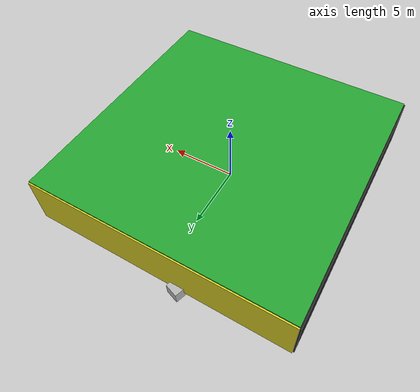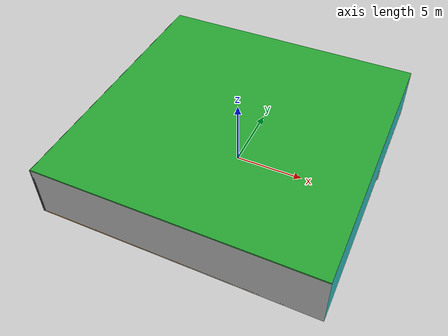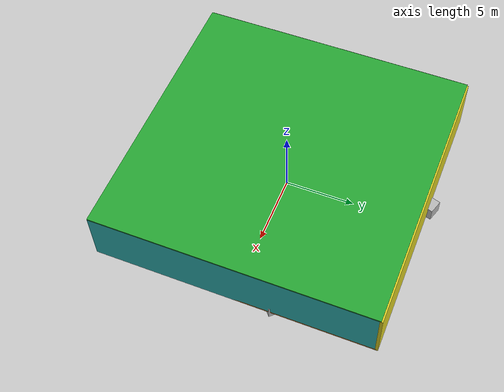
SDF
<sdf version="1.4">
 <world name="default">
  <physics type="ode">
   <max_step_size>0.001</max_step_size>
   <real_time_factor>1</real_time_factor>
   <real_time_update_rate>1000</real_time_update_rate>
   <gravity>0 0 -9.8</gravity>
  </physics>
  <scene><ambient>0.4 0.4 0.4 1</ambient><background>0.7 0.7 0.7 1</background><shadows>1</shadows></scene>
  <model name="Surrounding">
   <static>1</static>
   <link name="Ceiling">
    <collision name="Ceiling_Collision"><geometry><box><size>20 20 0.1</size></box></geometry></collision>
    <visual name="Ceiling_Visual">
     <geometry><box><size>20 20 0.1</size></box></geometry>
     <material>
      <script><uri>file://media/materials/scripts/gazebo.material</uri><name>Gazebo/Green</name></script>
     </material>
    </visual>
    <pose>0 0 4.05 0 0 0</pose>
   </link>
   <link name="Wall_South">
    <collision name="Wall_South_Collision">
     <geometry><box><size>20 0 4</size></box></geometry>
     <pose>0 0 2 0 -0 0</pose>
    </collision>
    <visual name="Wall_South_Visual">
     <pose>0 0 2 0 -0 0</pose>
     <geometry><box><size>20 0 4</size></box></geometry>
     <material>
      <script><uri>file://media/materials/scripts/gazebo.material</uri><name>Gazebo/JointAnchor</name></script>
     </material>
    </visual>
    <velocity_decay><linear>0</linear><angular>0</angular></velocity_decay>
    <pose>0 -10 0 0 -0 0</pose>
   </link>
   <link name="Wall_East">
    <collision name="Wall_21_Collision">
     <geometry><box><size>20 0 4</size></box></geometry>
     <pose>0 0 2 0 -0 0</pose>
    </collision>
    <visual name="Wall_21_Visual">
     <pose>0 0 2 0 -0 0</pose>
     <geometry><box><size>20 0 4</size></box></geometry>
     <material>
      <script><uri>file://media/materials/scripts/gazebo.material</uri><name>Gazebo/Turquoise</name></script>
     </material>
    </visual>
    <velocity_decay><linear>0</linear><angular>0</angular></velocity_decay>
    <pose>10 0 0 0 -0 1.5708</pose>
   </link>
   <link name="Wall_North">
    <collision name="Wall_22_Collision">
     <geometry><box><size>20 0.2 4</size></box></geometry>
     <pose>0 0 2 0 -0 0</pose>
    </collision>
    <visual name="Wall_22_Visual">
     <pose>0 0 2 0 -0 0</pose>
     <geometry><box><size>20 0.2 4</size></box></geometry>
     <material>
      <script><uri>file://media/materials/scripts/gazebo.material</uri><name>Gazebo/Yellow</name></script>
     </material>
    </visual>
    <velocity_decay><linear>0</linear><angular>0</angular></velocity_decay>
    <pose>0 10 0 0 -0 0</pose>
   </link>
   <link name="Wall_West">
    <collision name="Wall_23_Collision">
     <geometry><box><size>20 0.2 4</size></box></geometry>
     <pose>0 0 2 0 -0 0</pose>
    </collision>
    <visual name="Wall_23_Visual">
     <pose>0 0 2 0 -0 0</pose>
     <geometry><box><size>20 0.2 4</size></box></geometry>
     <material>
      <script><uri>file://media/materials/scripts/gazebo.material</uri><name>Gazebo/FlatBlack</name></script>
     </material>
    </visual>
    <velocity_decay><linear>0</linear><angular>0</angular></velocity_decay>
    <pose>-10 0 0 0 0 -1.5708</pose>
   </link>
   <link name="Ground_link">
    <collision name="collision">
     <pose>0 0 .05 0 -0 0</pose>
     <geometry><box><size>20 20 0.1</size></box></geometry>
    </collision>
    <visual name="visual">
     <pose>0 0 .05 0 -0 0</pose>
     <geometry><box><size>20 20 0.1</size></box></geometry>
     <material>
      <script><uri>file://media/materials/scripts/gazebo.material</uri><name>Gazebo/Orange</name></script>
     </material>
    </visual>
   </link>
   <static>1</static>
  </model>
  <spherical_coordinates>
   <surface_model>EARTH_WGS84</surface_model>
   <latitude_deg>0</latitude_deg>
   <longitude_deg>0</longitude_deg>
   <elevation>0</elevation>
   <heading_deg>0</heading_deg>
  </spherical_coordinates>
  <light name="lightball_0" type="diffuse">
   <diffuse>0.8 0.8 0.8 1</diffuse>
   <specular>0.2 0.2 0.2 1</specular>
   <attenuation>
    <range>100</range>
    <constant>0.7</constant>
    <linear>0.01</linear>
    <quadratic>0.001</quadratic>
   </attenuation>
   <direction>-0.5 0.1 -0.9</direction>
   <pose>1.92837193942 6.47295179464 1.70230817926 0 0 0</pose>
  </light>
  <light name="lightball_1" type="diffuse">
   <diffuse>0.8 0.8 0.8 1</diffuse>
   <specular>0.2 0.2 0.2 1</specular>
   <attenuation>
    <range>100</range>
    <constant>0.7</constant>
    <linear>0.01</linear>
    <quadratic>0.001</quadratic>
   </attenuation>
   <direction>-0.5 0.1 -0.9</direction>
   <pose>-0.746259621059 -4.64046722594 3.00106894441 0 0 0</pose>
  </light>
  <include><uri>model://cabinet</uri><pose>-7.73265291585 8.15300346765 0 0 0 1.33272120713</pose></include>
  <include><uri>model://table</uri><pose>-5.18023388371 -4.70231209501 0 0 0 0.0834737630234</pose></include>
  <include>
   <uri>model://textured_shapes</uri>
   <pose>-4.98509707816 1.35762873883 0 0 0 0.480776609619</pose>
  </include>
  <include>
   <uri>model://textured_shapes</uri>
   <pose>-2.14974930794 8.66973074822 0 0 0 2.82362693312</pose>
  </include>
  <include>
   <uri>model://construction_cone</uri>
   <pose>5.12220209725 -1.17515812315 0 0 0 1.01784952194</pose>
  </include>
  <include><uri>model://cabinet</uri><pose>4.9153872063 2.17439315266 0 0 0 1.13134707007</pose></include>
  <include>
   <uri>model://textured_shapes</uri>
   <pose>8.34728676791 3.77384011981 0 0 0 0.742672384848</pose>
  </include>
 </world>
</sdf>

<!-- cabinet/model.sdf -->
<sdf version="1.5">
  <model name="cabinet">
    <static>true</static>
    <link name="cabinet_bottom_plate">
      <inertial>
        <pose>0 0 -1 0 0 0</pose>
        <inertia>
          <ixx>2.050000</ixx>
          <ixy>0</ixy>
          <ixz>0</ixz>
          <iyy>2.050000</iyy>
          <iyz>0</iyz>
          <izz>2.050000</izz>
        </inertia>
        <mass>25.000000</mass>
      </inertial>
      <collision name="cabinet_bottom_plate_geom">
        <pose>0 0 0.010000 0 0 0</pose>
        <geometry>
          <box>
            <size>0.450000 0.450000 0.020000</size>
          </box>
        </geometry>
      </collision>
      <visual name="cabinet_bottom_plate_geom_visual">
        <pose>0 0 0.010000 0 0 0</pose>
        <geometry>
          <box>
            <size>0.450000 0.450000 0.020000</size>
          </box>
        </geometry>
        <material>
          <script>
            <uri>model://media/materials/scripts/gazebo.material</uri>
            <name>Gazebo/Wood</name>
          </script>
        </material>
      </visual>
      <collision name="cabinet_bottom_plate_geom_cabinet_back_plate">
        <pose>0.235000 0 0.510000 0 0 0</pose>
        <geometry>
          <box>
            <size>0.020000 0.450000 1.020000</size>
          </box>
        </geometry>
      </collision>
      <visual name="cabinet_bottom_plate_geom_cabinet_back_plate_visual">
        <pose>0.235000 0 0.510000 0 0 0</pose>
        <geometry>
          <box>
            <size>0.020000 0.450000 1.020000</size>
          </box>
        </geometry>
        <material>
          <script>
            <uri>model://media/materials/scripts/gazebo.material</uri>
            <name>Gazebo/Wood</name>
          </script>
        </material>
      </visual>
      <collision name="cabinet_bottom_plate_geom_cabinet_left_plate">
        <pose>0 0.235000 0.510000 0 0 0</pose>
        <geometry>
          <box>
            <size>0.450000 0.020000 1.020000</size>
          </box>
        </geometry>
      </collision>
      <visual name="cabinet_bottom_plate_geom_cabinet_left_plate_visual">
        <pose>0 0.235000 0.510000 0 0 0</pose>
        <geometry>
          <box>
            <size>0.450000 0.020000 1.020000</size>
          </box>
        </geometry>
        <material>
          <script>
            <uri>model://media/materials/scripts/gazebo.material</uri>
            <name>Gazebo/Wood</name>
          </script>
        </material>
      </visual>
      <collision name="cabinet_bottom_plate_geom_cabinet_middle_plate">
        <pose>0 0 0.510000 0 0 0</pose>
        <geometry>
          <box>
            <size>0.450000 0.450000 0.020000</size>
          </box>
        </geometry>
      </collision>
      <visual name="cabinet_bottom_plate_geom_cabinet_middle_plate_visual">
        <pose>0 0 0.510000 0 0 0</pose>
        <geometry>
          <box>
            <size>0.450000 0.450000 0.020000</size>
          </box>
        </geometry>
        <material>
          <script>
            <uri>model://media/materials/scripts/gazebo.material</uri>
            <name>Gazebo/Wood</name>
          </script>
        </material>
      </visual>
      <collision name="cabinet_bottom_plate_geom_cabinet_right_plate">
        <pose>0 -0.235000 0.510000 0 0 0</pose>
        <geometry>
          <box>
            <size>0.450000 0.020000 1.020000</size>
          </box>
        </geometry>
      </collision>
      <visual name="cabinet_bottom_plate_geom_cabinet_right_plate_visual">
        <pose>0 -0.235000 0.510000 0 0 0</pose>
        <geometry>
          <box>
            <size>0.450000 0.020000 1.020000</size>
          </box>
        </geometry>
        <material>
          <script>
            <uri>model://media/materials/scripts/gazebo.material</uri>
            <name>Gazebo/Wood</name>
          </script>
        </material>
      </visual>
      <collision name="cabinet_bottom_plate_geom_cabinet_top_plate">
        <pose>0 0 1.010000 0 0 0</pose>
        <geometry>
          <box>
            <size>0.450000 0.450000 0.020000</size>
          </box>
        </geometry>
      </collision>
      <visual name="cabinet_bottom_plate_geom_cabinet_top_plate_visual">
        <pose>0 0 1.010000 0 0 0</pose>
        <geometry>
          <box>
            <size>0.450000 0.450000 0.020000</size>
          </box>
        </geometry>
        <material>
          <script>
            <uri>model://media/materials/scripts/gazebo.material</uri>
            <name>Gazebo/Wood</name>
          </script>
        </material>
      </visual>
    </link>
  </model>
</sdf>

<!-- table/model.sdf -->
<sdf version="1.5">
  <model name="table">
    <static>true</static>
    <link name="link">
      <collision name="surface">
        <pose>0 0 1.0 0 0 0</pose>
        <geometry>
          <box>
            <size>1.5 0.8 0.03</size>
          </box>
        </geometry>
        <surface>
          <friction>
            <ode>
              <mu>0.6</mu>
              <mu2>0.6</mu2>
            </ode>
          </friction>
        </surface>
      </collision>
      <visual name="visual1">
        <pose>0 0 1.0 0 0 0</pose>
        <geometry>
          <box>
            <size>1.5 0.8 0.03</size>
          </box>
        </geometry>
        <material>
          <script>
            <uri>model://media/materials/scripts/gazebo.material</uri>
            <name>Gazebo/Wood</name>
          </script>
        </material>
      </visual>
      <collision name="front_left_leg">
        <pose>0.68 0.38 0.5 0 0 0</pose>
        <geometry>
          <cylinder>
            <radius>0.02</radius>
            <length>1.0</length>
          </cylinder>
        </geometry>
      </collision>
      <visual name="front_left_leg">
        <pose>0.68 0.38 0.5 0 0 0</pose>
        <geometry>
          <cylinder>
            <radius>0.02</radius>
            <length>1.0</length>
          </cylinder>
        </geometry>
        <material>
          <script>
            <uri>model://media/materials/scripts/gazebo.material</uri>
            <name>Gazebo/Grey</name>
          </script>
        </material>
      </visual>
      <collision name="front_right_leg">
        <pose>0.68 -0.38 0.5 0 0 0</pose>
        <geometry>
          <cylinder>
            <radius>0.02</radius>
            <length>1.0</length>
          </cylinder>
        </geometry>
      </collision>
      <visual name="front_right_leg">
        <pose>0.68 -0.38 0.5 0 0 0</pose>
        <geometry>
          <cylinder>
            <radius>0.02</radius>
            <length>1.0</length>
          </cylinder>
        </geometry>
        <material>
          <script>
            <uri>model://media/materials/scripts/gazebo.material</uri>
            <name>Gazebo/Grey</name>
          </script>
        </material>
      </visual>
      <collision name="back_right_leg">
        <pose>-0.68 -0.38 0.5 0 0 0</pose>
        <geometry>
          <cylinder>
            <radius>0.02</radius>
            <length>1.0</length>
          </cylinder>
        </geometry>
      </collision>
      <visual name="back_right_leg">
        <pose>-0.68 -0.38 0.5 0 0 0</pose>
        <geometry>
          <cylinder>
            <radius>0.02</radius>
            <length>1.0</length>
          </cylinder>
        </geometry>
        <material>
          <script>
            <uri>model://media/materials/scripts/gazebo.material</uri>
            <name>Gazebo/Grey</name>
          </script>
        </material>
      </visual>
      <collision name="back_left_leg">
        <pose>-0.68 0.38 0.5 0 0 0</pose>
        <geometry>
          <cylinder>
            <radius>0.02</radius>
            <length>1.0</length>
          </cylinder>
        </geometry>
      </collision>
      <visual name="back_left_leg">
        <pose>-0.68 0.38 0.5 0 0 0</pose>
        <geometry>
          <cylinder>
            <radius>0.02</radius>
            <length>1.0</length>
          </cylinder>
        </geometry>
        <material>
          <script>
            <uri>model://media/materials/scripts/gazebo.material</uri>
            <name>Gazebo/Grey</name>
          </script>
        </material>
      </visual>
    </link>
  </model>
</sdf>

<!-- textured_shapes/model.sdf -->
<sdf version="1.6">
  <model name="textured_shapes">
    <pose>0 0 0.5 0 0 0</pose>
    <link name="box">
      <pose>0 -1.5 0 0 0 0</pose>
      <collision name="collision">
        <geometry>
          <box>
            <size>1 1 1</size>
          </box>
        </geometry>
      </collision>
      <visual name="visual">
        <geometry>
          <box>
            <size>1 1 1</size>
          </box>
        </geometry>
        <material>
          <script>
            <uri>model://../model_source/models/textured_shapes/materials/scripts</uri>
            <uri>model://../model_source/models/textured_shapes/materials/textures</uri>
            <name>TexturedShape/Squares</name>
          </script>
        </material>
      </visual>
    </link>
    <link name="sphere">
      <collision name="collision">
        <geometry>
          <sphere>
            <radius>0.5</radius>
          </sphere>
        </geometry>
      </collision>
      <visual name="visual">
        <geometry>
          <sphere>
            <radius>0.5</radius>
          </sphere>
        </geometry>
        <material>
          <script>
            <uri>model://../model_source/models/textured_shapes/materials/scripts</uri>
            <uri>model://../model_source/models/textured_shapes/materials/textures</uri>
            <name>TexturedShape/Squares</name>
          </script>
        </material>
      </visual>
    </link>
    <link name="cylinder">
      <pose>0 1.5 0 0 0 0</pose>
      <collision name="collision">
        <geometry>
          <cylinder>
            <radius>0.5</radius>
            <length>1</length>
          </cylinder>
        </geometry>
      </collision>
      <visual name="visual">
        <geometry>
          <cylinder>
            <radius>0.5</radius>
            <length>1</length>
          </cylinder>
        </geometry>
        <material>
          <script>
            <uri>model://../model_source/models/textured_shapes/materials/scripts</uri>
            <uri>model://../model_source/models/textured_shapes/materials/textures</uri>
            <name>TexturedShape/Squares</name>
          </script>
        </material>
      </visual>
    </link>
  </model>
</sdf>

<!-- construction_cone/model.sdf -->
<sdf version="1.5">
  <model name="Construction Cone">
    <link name="link">
      <collision name="collision">
        <geometry>
          <mesh>
            <scale>10 10 10</scale>
            <uri>file://isr-testbed/construction_cone/meshes/construction_cone.dae</uri>
          </mesh>
        </geometry>
      </collision>
      <visual name="visual">
        <geometry>
          <mesh>
            <scale>10 10 10</scale>
            <uri>file://isr-testbed/construction_cone/meshes/construction_cone.dae</uri>
          </mesh>
        </geometry>
      </visual>
    </link>
  </model>
</sdf>
